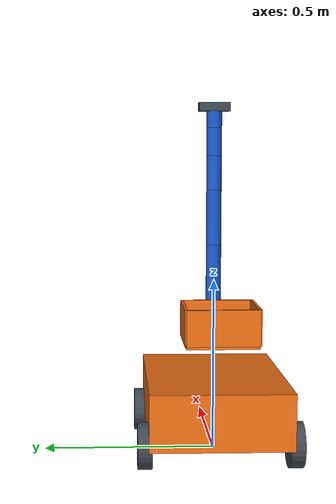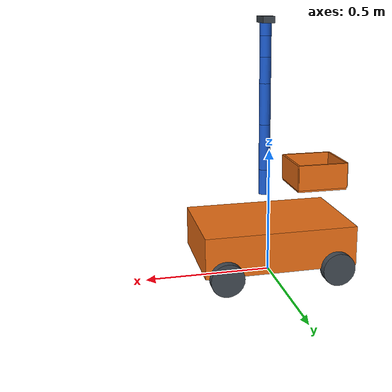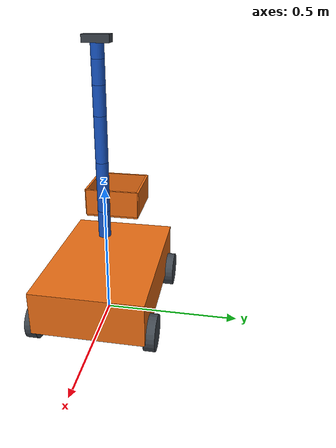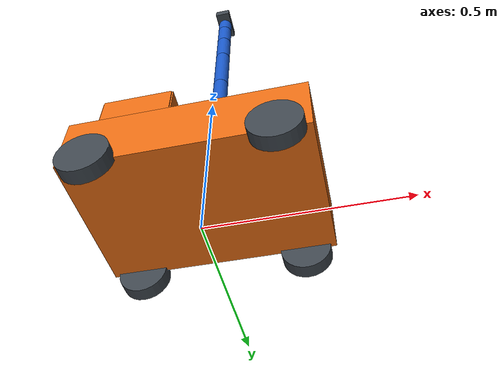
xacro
<?xml version="1.0"?>
<robot name="placeholder_mobile_manipulator" xmlns:xacro="http://ros.org/wiki/xacro">
  <xacro:arg name="base_length" default="0.60"/>
  <xacro:arg name="base_width" default="0.40"/>
  <xacro:arg name="base_height" default="0.16"/>
  <xacro:arg name="base_mass" default="18.0"/>
  <xacro:arg name="wheel_radius" default="0.065"/>
  <xacro:arg name="wheel_width" default="0.040"/>
  <xacro:arg name="wheel_x" default="0.22"/>
  <xacro:arg name="wheel_y" default="0.21"/>
  <xacro:arg name="arm_mount_x" default="0.02"/>
  <xacro:arg name="arm_mount_y" default="0.00"/>
  <xacro:arg name="arm_mount_z" default="0.18"/>
  <xacro:arg name="arm_link_radius" default="0.022"/>
  <xacro:arg name="arm_link_1" default="0.10"/>
  <xacro:arg name="arm_link_2" default="0.18"/>
  <xacro:arg name="arm_link_3" default="0.16"/>
  <xacro:arg name="arm_link_4" default="0.10"/>
  <xacro:arg name="arm_link_5" default="0.08"/>
  <xacro:arg name="arm_link_6" default="0.06"/>
  <xacro:arg name="gripper_opening" default="0.070"/>
  <xacro:arg name="finger_length" default="0.060"/>
  <xacro:arg name="finger_width" default="0.010"/>
  <xacro:arg name="finger_height" default="0.018"/>
  <xacro:arg name="bin_length" default="0.20"/>
  <xacro:arg name="bin_width" default="0.20"/>
  <xacro:arg name="bin_depth" default="0.10"/>
  <xacro:arg name="bin_wall" default="0.008"/>
  <xacro:arg name="bin_x" default="-0.19"/>
  <xacro:arg name="bin_y" default="0.00"/>
  <xacro:arg name="bin_z" default="0.21"/>
  <xacro:arg name="front_rgbd_xyz" default="0.27 0 0.15"/>
  <xacro:arg name="front_rgbd_rpy" default="0 0.35 0"/>
  <xacro:arg name="single_lidar_xyz" default="0.05 0 0.22"/>
  <xacro:arg name="mid360_xyz" default="0 0 0.30"/>
  <xacro:arg name="rear_fisheye_x" default="-0.25"/>
  <xacro:arg name="rear_fisheye_y" default="0.17"/>
  <xacro:arg name="rear_fisheye_z" default="0.15"/>
  <xacro:arg name="wrist_stereo_baseline" default="0.055"/>

  <xacro:property name="base_length" value="$(arg base_length)"/>
  <xacro:property name="base_width" value="$(arg base_width)"/>
  <xacro:property name="base_height" value="$(arg base_height)"/>
  <xacro:property name="base_mass" value="$(arg base_mass)"/>
  <xacro:property name="wheel_radius" value="$(arg wheel_radius)"/>
  <xacro:property name="wheel_width" value="$(arg wheel_width)"/>
  <xacro:property name="wheel_x" value="$(arg wheel_x)"/>
  <xacro:property name="wheel_y" value="$(arg wheel_y)"/>
  <xacro:property name="arm_radius" value="$(arg arm_link_radius)"/>
  <xacro:property name="finger_length" value="$(arg finger_length)"/>
  <xacro:property name="finger_width" value="$(arg finger_width)"/>
  <xacro:property name="finger_height" value="$(arg finger_height)"/>
  <xacro:property name="gripper_opening" value="$(arg gripper_opening)"/>
  <xacro:property name="bin_length" value="$(arg bin_length)"/>
  <xacro:property name="bin_width" value="$(arg bin_width)"/>
  <xacro:property name="bin_depth" value="$(arg bin_depth)"/>
  <xacro:property name="bin_wall" value="$(arg bin_wall)"/>
  <xacro:property name="rear_fisheye_y" value="$(arg rear_fisheye_y)"/>
  <xacro:property name="wrist_stereo_baseline" value="$(arg wrist_stereo_baseline)"/>

  <material name="placeholder_orange"><color rgba="0.92 0.43 0.08 1"/></material>
  <material name="placeholder_gray"><color rgba="0.25 0.28 0.31 1"/></material>
  <material name="placeholder_blue"><color rgba="0.10 0.35 0.80 1"/></material>

  <link name="base_footprint"/>
  <link name="base_link">
    <visual><geometry><box size="${base_length} ${base_width} ${base_height}"/></geometry><material name="placeholder_orange"/></visual>
    <collision><geometry><box size="${base_length} ${base_width} ${base_height}"/></geometry></collision>
    <inertial>
      <mass value="${base_mass}"/>
      <inertia ixx="${base_mass * (base_width * base_width + base_height * base_height) / 12}" ixy="0" ixz="0" iyy="${base_mass * (base_length * base_length + base_height * base_height) / 12}" iyz="0" izz="${base_mass * (base_length * base_length + base_width * base_width) / 12}"/>
    </inertial>
  </link>
  <joint name="base_footprint_joint" type="fixed">
    <parent link="base_footprint"/><child link="base_link"/>
    <origin xyz="0 0 ${base_height / 2 + wheel_radius}"/>
  </joint>

  <xacro:macro name="placeholder_wheel" params="name x y roller_sign">
    <link name="${name}_wheel_link">
      <visual><origin rpy="${pi / 2} 0 0"/><geometry><cylinder radius="${wheel_radius}" length="${wheel_width}"/></geometry><material name="placeholder_gray"/></visual>
      <collision><origin rpy="${pi / 2} 0 0"/><geometry><cylinder radius="${wheel_radius}" length="${wheel_width}"/></geometry></collision>
      <inertial><mass value="0.7"/><inertia ixx="0.001" ixy="0" ixz="0" iyy="0.001" iyz="0" izz="0.001"/></inertial>
    </link>
    <joint name="${name}_wheel_joint" type="continuous">
      <parent link="base_link"/><child link="${name}_wheel_link"/>
      <origin xyz="${x} ${y} ${-base_height / 2}"/><axis xyz="0 1 0"/><limit effort="8" velocity="20"/>
    </joint>
    <!-- roller_sign is retained for a future measured mecanum contact model. -->
    <gazebo reference="${name}_wheel_link"><material>Gazebo/DarkGrey</material><mu1>1.0</mu1><mu2>1.0</mu2><fdir1>1 ${roller_sign} 0</fdir1></gazebo>
  </xacro:macro>
  <xacro:placeholder_wheel name="front_left" x="${wheel_x}" y="${wheel_y}" roller_sign="1"/>
  <xacro:placeholder_wheel name="front_right" x="${wheel_x}" y="${-wheel_y}" roller_sign="-1"/>
  <xacro:placeholder_wheel name="rear_left" x="${-wheel_x}" y="${wheel_y}" roller_sign="-1"/>
  <xacro:placeholder_wheel name="rear_right" x="${-wheel_x}" y="${-wheel_y}" roller_sign="1"/>

  <link name="arm_mount_link"/>
  <joint name="arm_mount_joint" type="fixed">
    <parent link="base_link"/><child link="arm_mount_link"/>
    <origin xyz="$(arg arm_mount_x) $(arg arm_mount_y) $(arg arm_mount_z)"/>
  </joint>

  <xacro:macro name="placeholder_arm_link" params="index parent parent_offset length axis lower upper mass">
    <link name="placeholder_arm_link_${index}">
      <visual><origin xyz="0 0 ${length / 2}"/><geometry><cylinder radius="${arm_radius}" length="${length}"/></geometry><material name="placeholder_blue"/></visual>
      <collision><origin xyz="0 0 ${length / 2}"/><geometry><cylinder radius="${arm_radius}" length="${length}"/></geometry></collision>
      <inertial><origin xyz="0 0 ${length / 2}"/><mass value="${mass}"/><inertia ixx="${mass * (3 * arm_radius * arm_radius + length * length) / 12}" ixy="0" ixz="0" iyy="${mass * (3 * arm_radius * arm_radius + length * length) / 12}" iyz="0" izz="${0.5 * mass * arm_radius * arm_radius}"/></inertial>
    </link>
    <joint name="placeholder_arm_joint_${index}" type="revolute">
      <parent link="${parent}"/><child link="placeholder_arm_link_${index}"/>
      <origin xyz="0 0 ${parent_offset}"/><axis xyz="${axis}"/><limit lower="${lower}" upper="${upper}" effort="20" velocity="1.0"/>
    </joint>
  </xacro:macro>
  <xacro:placeholder_arm_link index="1" parent="arm_mount_link" parent_offset="0" length="$(arg arm_link_1)" axis="0 0 1" lower="-${pi}" upper="${pi}" mass="1.0"/>
  <xacro:placeholder_arm_link index="2" parent="placeholder_arm_link_1" parent_offset="$(arg arm_link_1)" length="$(arg arm_link_2)" axis="0 1 0" lower="-2.2" upper="2.2" mass="0.9"/>
  <xacro:placeholder_arm_link index="3" parent="placeholder_arm_link_2" parent_offset="$(arg arm_link_2)" length="$(arg arm_link_3)" axis="0 1 0" lower="-2.5" upper="2.5" mass="0.8"/>
  <xacro:placeholder_arm_link index="4" parent="placeholder_arm_link_3" parent_offset="$(arg arm_link_3)" length="$(arg arm_link_4)" axis="1 0 0" lower="-${pi}" upper="${pi}" mass="0.5"/>
  <xacro:placeholder_arm_link index="5" parent="placeholder_arm_link_4" parent_offset="$(arg arm_link_4)" length="$(arg arm_link_5)" axis="0 1 0" lower="-2.2" upper="2.2" mass="0.4"/>
  <xacro:placeholder_arm_link index="6" parent="placeholder_arm_link_5" parent_offset="$(arg arm_link_5)" length="$(arg arm_link_6)" axis="1 0 0" lower="-${pi}" upper="${pi}" mass="0.3"/>

  <link name="gripper_palm_link">
    <visual><geometry><box size="0.045 0.090 0.025"/></geometry><material name="placeholder_gray"/></visual>
    <collision><geometry><box size="0.045 0.090 0.025"/></geometry></collision>
    <inertial><mass value="0.20"/><inertia ixx="0.0002" ixy="0" ixz="0" iyy="0.0002" iyz="0" izz="0.0002"/></inertial>
  </link>
  <joint name="placeholder_tool_joint" type="fixed"><parent link="placeholder_arm_link_6"/><child link="gripper_palm_link"/><origin xyz="0 0 $(arg arm_link_6)"/></joint>

  <xacro:macro name="placeholder_finger" params="side direction">
    <link name="${side}_finger_link">
      <visual><origin xyz="0 0 ${-finger_length / 2}"/><geometry><box size="${finger_width} ${finger_height} ${finger_length}"/></geometry><material name="placeholder_gray"/></visual>
      <collision><origin xyz="0 0 ${-finger_length / 2}"/><geometry><box size="${finger_width} ${finger_height} ${finger_length}"/></geometry></collision>
      <inertial><mass value="0.04"/><inertia ixx="0.00002" ixy="0" ixz="0" iyy="0.00002" iyz="0" izz="0.00001"/></inertial>
    </link>
    <joint name="${side}_finger_joint" type="prismatic">
      <parent link="gripper_palm_link"/><child link="${side}_finger_link"/>
      <origin xyz="0 ${direction * 0.012} -0.012"/><axis xyz="0 ${direction} 0"/>
      <limit lower="0" upper="${gripper_opening / 2}" effort="12" velocity="0.05"/>
    </joint>
  </xacro:macro>
  <xacro:placeholder_finger side="left" direction="1"/>
  <xacro:placeholder_finger side="right" direction="-1"/>

  <!-- Open-top rear bin: base plus four walls, not a solid collision box. -->
  <link name="rear_collection_bin_link">
    <visual name="bin_floor_visual"><origin xyz="0 0 ${-bin_wall / 2}"/><geometry><box size="${bin_length} ${bin_width} ${bin_wall}"/></geometry><material name="placeholder_orange"/></visual>
    <visual name="bin_front_visual"><origin xyz="${bin_length / 2} 0 ${bin_depth / 2}"/><geometry><box size="${bin_wall} ${bin_width} ${bin_depth}"/></geometry><material name="placeholder_orange"/></visual>
    <visual name="bin_rear_visual"><origin xyz="${-bin_length / 2} 0 ${bin_depth / 2}"/><geometry><box size="${bin_wall} ${bin_width} ${bin_depth}"/></geometry><material name="placeholder_orange"/></visual>
    <visual name="bin_left_visual"><origin xyz="0 ${bin_width / 2} ${bin_depth / 2}"/><geometry><box size="${bin_length} ${bin_wall} ${bin_depth}"/></geometry><material name="placeholder_orange"/></visual>
    <visual name="bin_right_visual"><origin xyz="0 ${-bin_width / 2} ${bin_depth / 2}"/><geometry><box size="${bin_length} ${bin_wall} ${bin_depth}"/></geometry><material name="placeholder_orange"/></visual>
    <collision name="bin_floor"><origin xyz="0 0 ${-bin_wall / 2}"/><geometry><box size="${bin_length} ${bin_width} ${bin_wall}"/></geometry></collision>
    <collision name="bin_front"><origin xyz="${bin_length / 2} 0 ${bin_depth / 2}"/><geometry><box size="${bin_wall} ${bin_width} ${bin_depth}"/></geometry></collision>
    <collision name="bin_rear"><origin xyz="${-bin_length / 2} 0 ${bin_depth / 2}"/><geometry><box size="${bin_wall} ${bin_width} ${bin_depth}"/></geometry></collision>
    <collision name="bin_left"><origin xyz="0 ${bin_width / 2} ${bin_depth / 2}"/><geometry><box size="${bin_length} ${bin_wall} ${bin_depth}"/></geometry></collision>
    <collision name="bin_right"><origin xyz="0 ${-bin_width / 2} ${bin_depth / 2}"/><geometry><box size="${bin_length} ${bin_wall} ${bin_depth}"/></geometry></collision>
    <inertial><mass value="0.6"/><inertia ixx="0.003" ixy="0" ixz="0" iyy="0.003" iyz="0" izz="0.003"/></inertial>
  </link>
  <joint name="rear_collection_bin_joint" type="fixed"><parent link="base_link"/><child link="rear_collection_bin_link"/><origin xyz="$(arg bin_x) $(arg bin_y) $(arg bin_z)"/></joint>
  <link name="bin_drop_frame"/>
  <joint name="bin_drop_joint" type="fixed"><parent link="rear_collection_bin_link"/><child link="bin_drop_frame"/><origin xyz="0 0 ${bin_depth + 0.03}"/></joint>

  <xacro:macro name="placeholder_sensor_frame" params="name parent xyz rpy">
    <link name="${name}"/>
    <joint name="${name}_joint" type="fixed"><parent link="${parent}"/><child link="${name}"/><origin xyz="${xyz}" rpy="${rpy}"/></joint>
  </xacro:macro>
  <xacro:placeholder_sensor_frame name="single_lidar_link" parent="base_link" xyz="$(arg single_lidar_xyz)" rpy="0 0 0"/>
  <xacro:placeholder_sensor_frame name="mid360_link" parent="base_link" xyz="$(arg mid360_xyz)" rpy="0 0 0"/>
  <xacro:placeholder_sensor_frame name="front_rgbd_link" parent="base_link" xyz="$(arg front_rgbd_xyz)" rpy="$(arg front_rgbd_rpy)"/>
  <xacro:placeholder_sensor_frame name="rear_left_fisheye_link" parent="base_link" xyz="$(arg rear_fisheye_x) $(arg rear_fisheye_y) $(arg rear_fisheye_z)" rpy="0 0 ${3 * pi / 4}"/>
  <xacro:placeholder_sensor_frame name="rear_right_fisheye_link" parent="base_link" xyz="$(arg rear_fisheye_x) ${-rear_fisheye_y} $(arg rear_fisheye_z)" rpy="0 0 ${-3 * pi / 4}"/>
  <xacro:placeholder_sensor_frame name="wrist_stereo_center_link" parent="gripper_palm_link" xyz="0 0.05 0" rpy="0 0 0"/>
  <xacro:placeholder_sensor_frame name="wrist_stereo_left_optical_frame" parent="wrist_stereo_center_link" xyz="0 ${wrist_stereo_baseline / 2} 0" rpy="0 0 0"/>
  <xacro:placeholder_sensor_frame name="wrist_stereo_right_optical_frame" parent="wrist_stereo_center_link" xyz="0 ${-wrist_stereo_baseline / 2} 0" rpy="0 0 0"/>
</robot>
